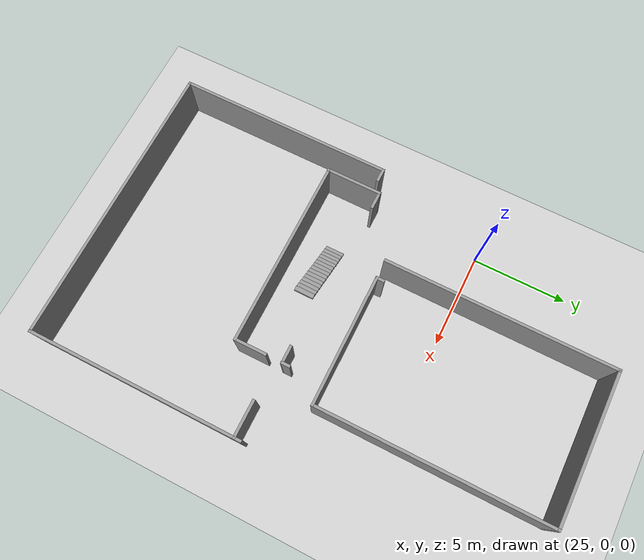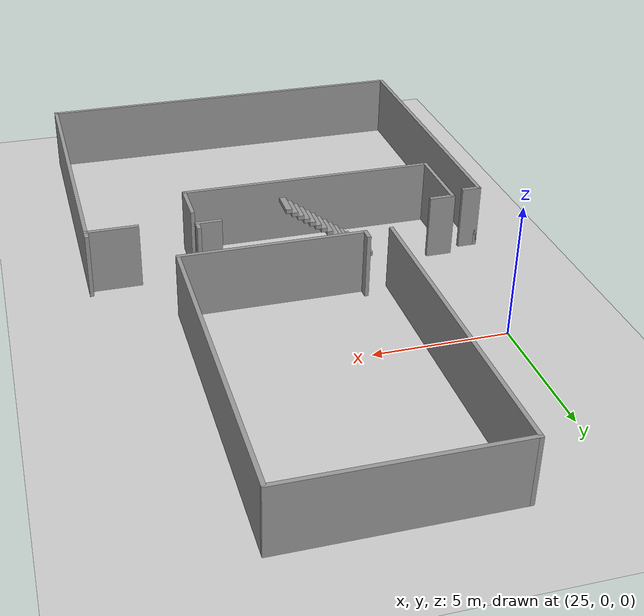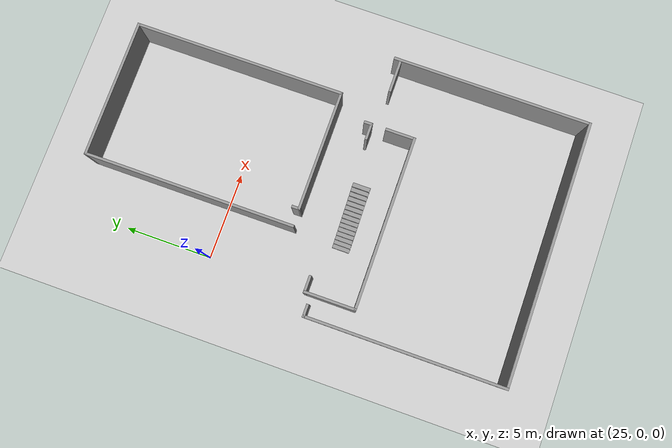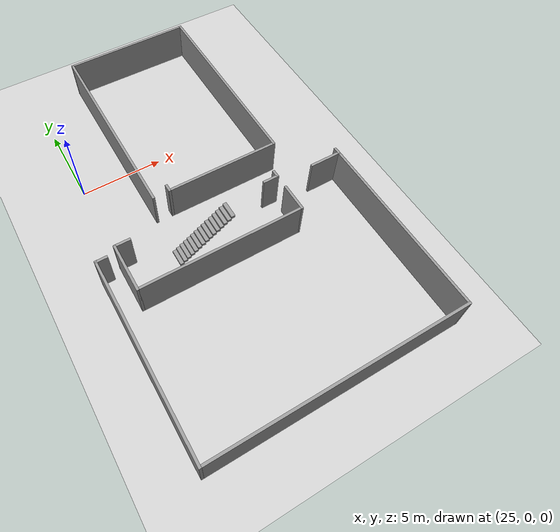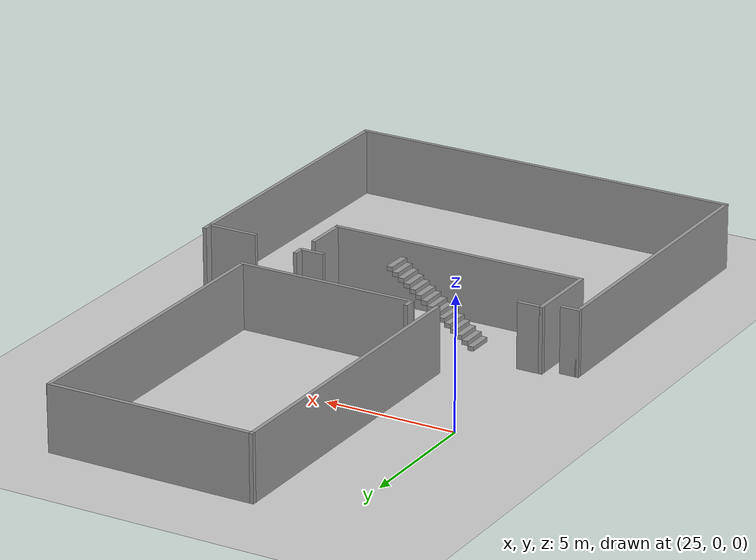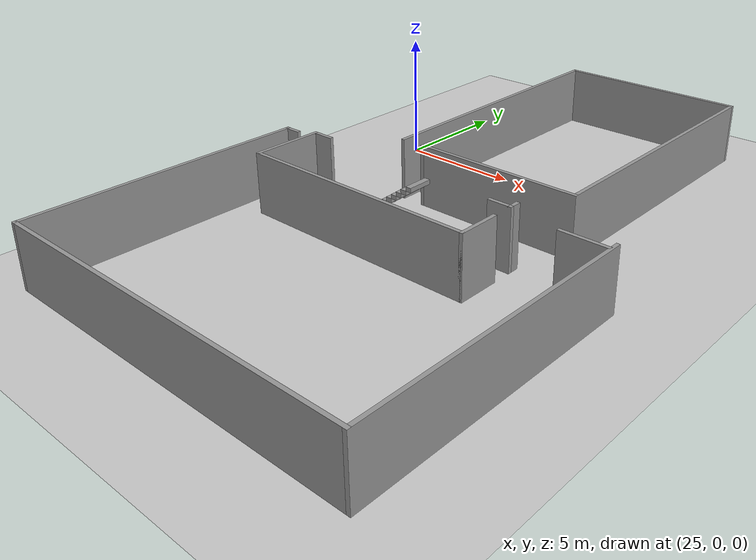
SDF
<sdf version="1.6">
 <world name="default">
  <model name="ground_plane">
   <static>1</static>
   <link name="link">
    <collision name="collision">
     <geometry><plane><normal>0 0 1</normal><size>100 100</size></plane></geometry>
     <surface><friction><ode><mu>100</mu><mu2>50</mu2></ode></friction></surface>
    </collision>
    <visual name="visual">
     <cast_shadows>0</cast_shadows>
     <geometry><plane><normal>0 0 1</normal><size>100 100</size></plane></geometry>
     <material>
      <script><uri>file://media/materials/scripts/gazebo.material</uri><name>Gazebo/Grey</name></script>
     </material>
    </visual>
   </link>
  </model>
  <model name="210">
   <pose>31.2026 -11.6558 0 0 -0 0</pose>
   <link name="Wall_101">
    <collision name="Wall_101_Collision">
     <geometry><box><size>11.46 0.15 2.5</size></box></geometry>
     <pose>0 0 1.25 0 -0 0</pose>
    </collision>
    <visual name="Wall_101_Visual">
     <pose>0 0 1.25 0 -0 0</pose>
     <geometry><box><size>11.46 0.15 2.5</size></box></geometry>
     <material>
      <script><uri>file://media/materials/scripts/gazebo.material</uri><name>Gazebo/Grey</name></script>
      <ambient>1 1 1 1</ambient>
     </material>
     <meta><layer>0</layer></meta>
    </visual>
    <pose>-7.545 -0.190602 0 0 -0 -1.5708</pose>
   </link>
   <link name="Wall_102">
    <collision name="Wall_102_Collision">
     <geometry><box><size>15.24 0.15 2.5</size></box></geometry>
     <pose>0 0 1.25 0 -0 0</pose>
    </collision>
    <visual name="Wall_102_Visual">
     <pose>0 0 1.25 0 -0 0</pose>
     <geometry><box><size>15.24 0.15 2.5</size></box></geometry>
     <material>
      <script><uri>file://media/materials/scripts/gazebo.material</uri><name>Gazebo/Grey</name></script>
      <ambient>1 1 1 1</ambient>
     </material>
     <meta><layer>0</layer></meta>
    </visual>
    <pose>0 -5.8456 0 0 -0 0</pose>
   </link>
   <link name="Wall_103">
    <collision name="Wall_103_Collision">
     <geometry><box><size>11.46 0.15 2.5</size></box></geometry>
     <pose>0 0 1.25 0 -0 0</pose>
    </collision>
    <visual name="Wall_103_Visual">
     <pose>0 0 1.25 0 -0 0</pose>
     <geometry><box><size>11.46 0.15 2.5</size></box></geometry>
     <material>
      <script><uri>file://media/materials/scripts/gazebo.material</uri><name>Gazebo/Grey</name></script>
      <ambient>1 1 1 1</ambient>
     </material>
     <meta><layer>0</layer></meta>
    </visual>
    <pose>7.545 -0.190602 0 0 -0 1.5708</pose>
   </link>
   <link name="Wall_105">
    <collision name="Wall_105_Collision">
     <geometry><box><size>0.75 0.15 2.5</size></box></geometry>
     <pose>0 0 1.25 0 -0 0</pose>
    </collision>
    <visual name="Wall_105_Visual">
     <pose>0 0 1.25 0 -0 0</pose>
     <geometry><box><size>0.75 0.15 2.5</size></box></geometry>
     <material>
      <script><uri>file://media/materials/scripts/gazebo.material</uri><name>Gazebo/Grey</name></script>
      <ambient>1 1 1 1</ambient>
     </material>
     <meta><layer>0</layer></meta>
    </visual>
    <pose>-7.245 5.4644 0 0 -0 0</pose>
   </link>
   <link name="Wall_108">
    <collision name="Wall_108_Collision">
     <geometry><box><size>3 0.15 2.5</size></box></geometry>
     <pose>0 0 1.25 0 -0 0</pose>
    </collision>
    <visual name="Wall_108_Visual">
     <pose>0 0 1.25 0 -0 0</pose>
     <geometry><box><size>3 0.15 2.5</size></box></geometry>
     <material>
      <script><uri>file://media/materials/scripts/gazebo.material</uri><name>Gazebo/Grey</name></script>
      <ambient>1 1 1 1</ambient>
     </material>
     <meta><layer>0</layer></meta>
    </visual>
    <pose>-6.32113 4.4206 0 0 -0 -1.5708</pose>
   </link>
   <link name="Wall_109">
    <collision name="Wall_109_Collision">
     <geometry><box><size>10 0.15 2.5</size></box></geometry>
     <pose>0 0 1.25 0 -0 0</pose>
    </collision>
    <visual name="Wall_109_Visual">
     <pose>0 0 1.25 0 -0 0</pose>
     <geometry><box><size>10 0.15 2.5</size></box></geometry>
     <material>
      <script><uri>file://media/materials/scripts/gazebo.material</uri><name>Gazebo/Grey</name></script>
      <ambient>1 1 1 1</ambient>
     </material>
     <meta><layer>0</layer></meta>
    </visual>
    <pose>-1.39613 2.9956 0 0 -0 0</pose>
   </link>
   <link name="Wall_111">
    <collision name="Wall_111_Collision">
     <geometry><box><size>0.5 0.15 2.5</size></box></geometry>
     <pose>0 0 1.25 0 -0 0</pose>
    </collision>
    <visual name="Wall_111_Visual">
     <pose>0 0 1.25 0 -0 0</pose>
     <geometry><box><size>0.5 0.15 2.5</size></box></geometry>
     <material>
      <script><uri>file://media/materials/scripts/gazebo.material</uri><name>Gazebo/Grey</name></script>
      <ambient>1 1 1 1</ambient>
     </material>
     <meta><layer>0</layer></meta>
    </visual>
    <pose>3.52887 5.6706 0 0 -0 -1.5708</pose>
   </link>
   <link name="Wall_112">
    <collision name="Wall_112_Collision">
     <geometry><box><size>1 0.15 2.5</size></box></geometry>
     <pose>0 0 1.25 0 -0 0</pose>
    </collision>
    <visual name="Wall_112_Visual">
     <pose>0 0 1.25 0 -0 0</pose>
     <geometry><box><size>1 0.15 2.5</size></box></geometry>
     <material>
      <script><uri>file://media/materials/scripts/gazebo.material</uri><name>Gazebo/Grey</name></script>
      <ambient>1 1 1 1</ambient>
     </material>
     <meta><layer>0</layer></meta>
    </visual>
    <pose>3.10387 5.4956 0 0 -0 3.14159</pose>
   </link>
   <link name="Wall_115">
    <collision name="Wall_115_Collision">
     <geometry><box><size>2 0.15 2.5</size></box></geometry>
     <pose>0 0 1.25 0 -0 0</pose>
    </collision>
    <visual name="Wall_115_Visual">
     <pose>0 0 1.25 0 -0 0</pose>
     <geometry><box><size>2 0.15 2.5</size></box></geometry>
     <material>
      <script><uri>file://media/materials/scripts/gazebo.material</uri><name>Gazebo/Grey</name></script>
      <ambient>1 1 1 1</ambient>
     </material>
     <meta><layer>0</layer></meta>
    </visual>
    <pose>6.6177 5.14338 0 0 -0 3.14159</pose>
   </link>
   <link name="Wall_117">
    <collision name="Wall_117_Collision">
     <geometry><box><size>1.75 0.15 2.5</size></box></geometry>
     <pose>0 0 1.25 0 -0 0</pose>
    </collision>
    <visual name="Wall_117_Visual">
     <pose>0 0 1.25 0 -0 0</pose>
     <geometry><box><size>1.75 0.15 2.5</size></box></geometry>
     <material>
      <script><uri>file://media/materials/scripts/gazebo.material</uri><name>Gazebo/Grey</name></script>
      <ambient>1 1 1 1</ambient>
     </material>
     <meta><layer>0</layer></meta>
    </visual>
    <pose>3.52887 3.7956 0 0 -0 1.5708</pose>
   </link>
   <link name="Wall_119">
    <collision name="Wall_119_Collision">
     <geometry><box><size>1 0.15 2.5</size></box></geometry>
     <pose>0 0 1.25 0 -0 0</pose>
    </collision>
    <visual name="Wall_119_Visual">
     <pose>0 0 1.25 0 -0 0</pose>
     <geometry><box><size>1 0.15 2.5</size></box></geometry>
     <material>
      <script><uri>file://media/materials/scripts/gazebo.material</uri><name>Gazebo/Grey</name></script>
      <ambient>1 1 1 1</ambient>
     </material>
     <meta><layer>0</layer></meta>
    </visual>
    <pose>-5.89613 5.8456 0 0 -0 0</pose>
   </link>
   <static>1</static>
  </model>
  <model name="classrooms_1">
   <pose>31.913 2.00923 0 0 -0 0</pose>
   <link name="Wall_39">
    <collision name="Wall_39_Collision">
     <geometry><box><size>12.192 0.15 2.5</size></box></geometry>
     <pose>0 0 1.25 0 -0 0</pose>
    </collision>
    <visual name="Wall_39_Visual">
     <pose>0 0 1.25 0 -0 0</pose>
     <geometry><box><size>12.192 0.15 2.5</size></box></geometry>
     <material>
      <script><uri>file://media/materials/scripts/gazebo.material</uri><name>Gazebo/Grey</name></script>
      <ambient>1 1 1 1</ambient>
     </material>
     <meta><layer>0</layer></meta>
    </visual>
    <pose>3.92486 -0.000205 0 0 -0 1.5708</pose>
   </link>
   <link name="Wall_40">
    <collision name="Wall_40_Collision">
     <geometry><box><size>7.99972 0.15 2.5</size></box></geometry>
     <pose>0 0 1.25 0 -0 0</pose>
    </collision>
    <visual name="Wall_40_Visual">
     <pose>0 0 1.25 0 -0 0</pose>
     <geometry><box><size>7.99972 0.15 2.5</size></box></geometry>
     <material>
      <script><uri>file://media/materials/scripts/gazebo.material</uri><name>Gazebo/Grey</name></script>
      <ambient>1 1 1 1</ambient>
     </material>
     <meta><layer>0</layer></meta>
    </visual>
    <pose>0 6.02093 0 0 -0 3.14156</pose>
   </link>
   <link name="Wall_41">
    <collision name="Wall_41_Collision">
     <geometry><box><size>12.1923 0.15 2.5</size></box></geometry>
     <pose>0 0 1.25 0 -0 0</pose>
    </collision>
    <visual name="Wall_41_Visual">
     <pose>0 0 1.25 0 -0 0</pose>
     <geometry><box><size>12.1923 0.15 2.5</size></box></geometry>
     <material>
      <script><uri>file://media/materials/scripts/gazebo.material</uri><name>Gazebo/Grey</name></script>
      <ambient>1 1 1 1</ambient>
     </material>
     <meta><layer>0</layer></meta>
    </visual>
    <pose>-3.92486 6.8e-05 0 0 -0 -1.5708</pose>
   </link>
   <link name="Wall_43">
    <collision name="Wall_43_Collision">
     <geometry><box><size>7 0.15 2.5</size></box></geometry>
     <pose>0 0 1.25 0 -0 0</pose>
    </collision>
    <visual name="Wall_43_Visual">
     <pose>0 0 1.25 0 -0 0</pose>
     <geometry><box><size>7 0.15 2.5</size></box></geometry>
     <material>
      <script><uri>file://media/materials/scripts/gazebo.material</uri><name>Gazebo/Grey</name></script>
      <ambient>1 1 1 1</ambient>
     </material>
     <meta><layer>0</layer></meta>
    </visual>
    <pose>0.49986 -6.02121 0 0 -0 3.14159</pose>
   </link>
   <link name="Wall_44">
    <collision name="Wall_44_Collision">
     <geometry><box><size>0.5 0.15 2.5</size></box></geometry>
     <pose>0 0 1.25 0 -0 0</pose>
    </collision>
    <visual name="Wall_44_Visual">
     <pose>0 0 1.25 0 -0 0</pose>
     <geometry><box><size>0.5 0.15 2.5</size></box></geometry>
     <material>
      <script><uri>file://media/materials/scripts/gazebo.material</uri><name>Gazebo/Grey</name></script>
      <ambient>1 1 1 1</ambient>
     </material>
     <meta><layer>0</layer></meta>
    </visual>
    <pose>-2.92514 -5.84621 0 0 -0 1.5708</pose>
   </link>
   <static>1</static>
  </model>
  <model name="Staircase_3">
   <link name="Stairs_0">
    <visual name="Stairs_0_Visual_2">
     <pose>-1.16667 -0 0.416667 0 -0 1.5708</pose>
     <geometry><box><size>1 0.233333 0.166667</size></box></geometry>
     <material>
      <script><uri>file://media/materials/scripts/gazebo.material</uri><name>Gazebo/Grey</name></script>
      <ambient>1 1 1 1</ambient>
      <shader type="pixel"/>
     </material>
     <meta><layer>0</layer></meta>
    </visual>
    <visual name="Stairs_0_Visual_3">
     <pose>-0.933333 -0 0.583333 0 -0 1.5708</pose>
     <geometry><box><size>1 0.233333 0.166667</size></box></geometry>
     <material>
      <script><uri>file://media/materials/scripts/gazebo.material</uri><name>Gazebo/Grey</name></script>
      <ambient>1 1 1 1</ambient>
      <shader type="pixel"/>
     </material>
     <meta><layer>0</layer></meta>
    </visual>
    <visual name="Stairs_0_Visual_4">
     <pose>-0.7 0 0.75 0 -0 1.5708</pose>
     <geometry><box><size>1 0.233333 0.166667</size></box></geometry>
     <material>
      <script><uri>file://media/materials/scripts/gazebo.material</uri><name>Gazebo/Grey</name></script>
      <ambient>1 1 1 1</ambient>
      <shader type="pixel"/>
     </material>
     <meta><layer>0</layer></meta>
    </visual>
    <visual name="Stairs_0_Visual_5">
     <pose>-0.466667 0 0.916667 0 -0 1.5708</pose>
     <geometry><box><size>1 0.233333 0.166667</size></box></geometry>
     <material>
      <script><uri>file://media/materials/scripts/gazebo.material</uri><name>Gazebo/Grey</name></script>
      <ambient>1 1 1 1</ambient>
      <shader type="pixel"/>
     </material>
     <meta><layer>0</layer></meta>
    </visual>
    <visual name="Stairs_0_Visual_6">
     <pose>-0.233333 0 1.08333 0 -0 1.5708</pose>
     <geometry><box><size>1 0.233333 0.166667</size></box></geometry>
     <material>
      <script><uri>file://media/materials/scripts/gazebo.material</uri><name>Gazebo/Grey</name></script>
      <ambient>1 1 1 1</ambient>
      <shader type="pixel"/>
     </material>
     <meta><layer>0</layer></meta>
    </visual>
    <visual name="Stairs_0_Visual_7">
     <pose>0 0 1.25 0 -0 1.5708</pose>
     <geometry><box><size>1 0.233333 0.166667</size></box></geometry>
     <material>
      <script><uri>file://media/materials/scripts/gazebo.material</uri><name>Gazebo/Grey</name></script>
      <ambient>1 1 1 1</ambient>
      <shader type="pixel"/>
     </material>
     <meta><layer>0</layer></meta>
    </visual>
    <visual name="Stairs_0_Visual_8">
     <pose>0.233333 0 1.41667 0 -0 1.5708</pose>
     <geometry><box><size>1 0.233333 0.166667</size></box></geometry>
     <material>
      <script><uri>file://media/materials/scripts/gazebo.material</uri><name>Gazebo/Grey</name></script>
      <ambient>1 1 1 1</ambient>
      <shader type="pixel"/>
     </material>
     <meta><layer>0</layer></meta>
    </visual>
    <visual name="Stairs_0_Visual_9">
     <pose>0.466667 0 1.58333 0 -0 1.5708</pose>
     <geometry><box><size>1 0.233333 0.166667</size></box></geometry>
     <material>
      <script><uri>file://media/materials/scripts/gazebo.material</uri><name>Gazebo/Grey</name></script>
      <ambient>1 1 1 1</ambient>
      <shader type="pixel"/>
     </material>
     <meta><layer>0</layer></meta>
    </visual>
    <visual name="Stairs_0_Visual_10">
     <pose>0.7 0 1.75 0 -0 1.5708</pose>
     <geometry><box><size>1 0.233333 0.166667</size></box></geometry>
     <material>
      <script><uri>file://media/materials/scripts/gazebo.material</uri><name>Gazebo/Grey</name></script>
      <ambient>1 1 1 1</ambient>
      <shader type="pixel"/>
     </material>
     <meta><layer>0</layer></meta>
    </visual>
    <visual name="Stairs_0_Visual_11">
     <pose>0.933334 0 1.91667 0 -0 1.5708</pose>
     <geometry><box><size>1 0.233333 0.166667</size></box></geometry>
     <material>
      <script><uri>file://media/materials/scripts/gazebo.material</uri><name>Gazebo/Grey</name></script>
      <ambient>1 1 1 1</ambient>
      <shader type="pixel"/>
     </material>
     <meta><layer>0</layer></meta>
    </visual>
    <visual name="Stairs_0_Visual_12">
     <pose>1.16667 0 2.08333 0 -0 1.5708</pose>
     <geometry><box><size>1 0.233333 0.166667</size></box></geometry>
     <material>
      <script><uri>file://media/materials/scripts/gazebo.material</uri><name>Gazebo/Grey</name></script>
      <ambient>1 1 1 1</ambient>
      <shader type="pixel"/>
     </material>
     <meta><layer>0</layer></meta>
    </visual>
    <visual name="Stairs_0_Visual_13">
     <pose>1.4 0 2.25 0 -0 1.5708</pose>
     <geometry><box><size>1 0.233333 0.166667</size></box></geometry>
     <material>
      <script><uri>file://media/materials/scripts/gazebo.material</uri><name>Gazebo/Grey</name></script>
      <ambient>1 1 1 1</ambient>
      <shader type="pixel"/>
     </material>
     <meta><layer>0</layer></meta>
    </visual>
    <visual name="Stairs_0_Visual_14">
     <pose>1.63333 0 2.41667 0 -0 1.5708</pose>
     <geometry><box><size>1 0.233333 0.166667</size></box></geometry>
     <material>
      <script><uri>file://media/materials/scripts/gazebo.material</uri><name>Gazebo/Grey</name></script>
      <ambient>1 1 1 1</ambient>
      <shader type="pixel"/>
     </material>
     <meta><layer>0</layer></meta>
    </visual>
    <visual name="Stairs_0_Visual_0">
     <pose>-1.63333 -0 0.083333 0 -0 1.5708</pose>
     <geometry><box><size>1 0.233333 0.166667</size></box></geometry>
     <material>
      <script><uri>file://media/materials/scripts/gazebo.material</uri><name>Gazebo/Grey</name></script>
      <ambient>1 1 1 1</ambient>
      <shader type="pixel"/>
     </material>
     <meta><layer>0</layer></meta>
    </visual>
    <visual name="Stairs_0_Visual_1">
     <pose>-1.4 -0 0.25 0 -0 1.5708</pose>
     <geometry><box><size>1 0.233333 0.166667</size></box></geometry>
     <material>
      <script><uri>file://media/materials/scripts/gazebo.material</uri><name>Gazebo/Grey</name></script>
      <ambient>1 1 1 1</ambient>
      <shader type="pixel"/>
     </material>
     <meta><layer>0</layer></meta>
    </visual>
    <collision name="Stairs_0_Collision_0">
     <pose>-1.63333 0 0.083333 0 -0 1.5708</pose>
     <geometry><box><size>1 0.233333 0.166667</size></box></geometry>
     <surface>
      <friction>
       <ode><mu>1</mu><mu2>1</mu2><fdir1>0 0 0</fdir1><slip1>0</slip1><slip2>0</slip2></ode>
       <torsional>
        <coefficient>1</coefficient>
        <patch_radius>0</patch_radius>
        <surface_radius>0</surface_radius>
        <use_patch_radius>1</use_patch_radius>
        <ode><slip>0</slip></ode>
       </torsional>
      </friction>
      <bounce><restitution_coefficient>0</restitution_coefficient><threshold>1e+06</threshold></bounce>
      <contact>
       <collide_without_contact>0</collide_without_contact>
       <collide_without_contact_bitmask>1</collide_without_contact_bitmask>
       <collide_bitmask>1</collide_bitmask>
       <ode>
        <soft_cfm>0</soft_cfm>
        <soft_erp>0.2</soft_erp>
        <kp>1e+13</kp>
        <kd>1</kd>
        <max_vel>0.01</max_vel>
        <min_depth>0</min_depth>
       </ode>
       <bullet>
        <split_impulse>1</split_impulse>
        <split_impulse_penetration_threshold>-0.01</split_impulse_penetration_threshold>
        <soft_cfm>0</soft_cfm>
        <soft_erp>0.2</soft_erp>
        <kp>1e+13</kp>
        <kd>1</kd>
       </bullet>
      </contact>
     </surface>
    </collision>
    <collision name="Stairs_0_Collision_1">
     <pose>-1.4 0 0.25 0 -0 1.5708</pose>
     <geometry><box><size>1 0.233333 0.166667</size></box></geometry>
     <surface>
      <friction>
       <ode><mu>1</mu><mu2>1</mu2><fdir1>0 0 0</fdir1><slip1>0</slip1><slip2>0</slip2></ode>
       <torsional>
        <coefficient>1</coefficient>
        <patch_radius>0</patch_radius>
        <surface_radius>0</surface_radius>
        <use_patch_radius>1</use_patch_radius>
        <ode><slip>0</slip></ode>
       </torsional>
      </friction>
      <bounce><restitution_coefficient>0</restitution_coefficient><threshold>1e+06</threshold></bounce>
      <contact>
       <collide_without_contact>0</collide_without_contact>
       <collide_without_contact_bitmask>1</collide_without_contact_bitmask>
       <collide_bitmask>1</collide_bitmask>
       <ode>
        <soft_cfm>0</soft_cfm>
        <soft_erp>0.2</soft_erp>
        <kp>1e+13</kp>
        <kd>1</kd>
        <max_vel>0.01</max_vel>
        <min_depth>0</min_depth>
       </ode>
       <bullet>
        <split_impulse>1</split_impulse>
        <split_impulse_penetration_threshold>-0.01</split_impulse_penetration_threshold>
        <soft_cfm>0</soft_cfm>
        <soft_erp>0.2</soft_erp>
        <kp>1e+13</kp>
        <kd>1</kd>
       </bullet>
      </contact>
     </surface>
    </collision>
    <collision name="Stairs_0_Collision_2">
     <pose>-1.16667 0 0.416667 0 -0 1.5708</pose>
     <geometry><box><size>1 0.233333 0.166667</size></box></geometry>
     <surface>
      <friction>
       <ode><mu>1</mu><mu2>1</mu2><fdir1>0 0 0</fdir1><slip1>0</slip1><slip2>0</slip2></ode>
       <torsional>
        <coefficient>1</coefficient>
        <patch_radius>0</patch_radius>
        <surface_radius>0</surface_radius>
        <use_patch_radius>1</use_patch_radius>
        <ode><slip>0</slip></ode>
       </torsional>
      </friction>
      <bounce><restitution_coefficient>0</restitution_coefficient><threshold>1e+06</threshold></bounce>
      <contact>
       <collide_without_contact>0</collide_without_contact>
       <collide_without_contact_bitmask>1</collide_without_contact_bitmask>
       <collide_bitmask>1</collide_bitmask>
       <ode>
        <soft_cfm>0</soft_cfm>
        <soft_erp>0.2</soft_erp>
        <kp>1e+13</kp>
        <kd>1</kd>
        <max_vel>0.01</max_vel>
        <min_depth>0</min_depth>
       </ode>
       <bullet>
        <split_impulse>1</split_impulse>
        <split_impulse_penetration_threshold>-0.01</split_impulse_penetration_threshold>
        <soft_cfm>0</soft_cfm>
        <soft_erp>0.2</soft_erp>
        <kp>1e+13</kp>
        <kd>1</kd>
       </bullet>
      </contact>
     </surface>
    </collision>
    <collision name="Stairs_0_Collision_3">
     <pose>-0.933333 0 0.583333 0 -0 1.5708</pose>
     <geometry><box><size>1 0.233333 0.166667</size></box></geometry>
     <surface>
      <friction>
       <ode><mu>1</mu><mu2>1</mu2><fdir1>0 0 0</fdir1><slip1>0</slip1><slip2>0</slip2></ode>
       <torsional>
        <coefficient>1</coefficient>
        <patch_radius>0</patch_radius>
        <surface_radius>0</surface_radius>
        <use_patch_radius>1</use_patch_radius>
        <ode><slip>0</slip></ode>
       </torsional>
      </friction>
      <bounce><restitution_coefficient>0</restitution_coefficient><threshold>1e+06</threshold></bounce>
      <contact>
       <collide_without_contact>0</collide_without_contact>
       <collide_without_contact_bitmask>1</collide_without_contact_bitmask>
       <collide_bitmask>1</collide_bitmask>
       <ode>
        <soft_cfm>0</soft_cfm>
        <soft_erp>0.2</soft_erp>
        <kp>1e+13</kp>
        <kd>1</kd>
        <max_vel>0.01</max_vel>
        <min_depth>0</min_depth>
       </ode>
       <bullet>
        <split_impulse>1</split_impulse>
        <split_impulse_penetration_threshold>-0.01</split_impulse_penetration_threshold>
        <soft_cfm>0</soft_cfm>
        <soft_erp>0.2</soft_erp>
        <kp>1e+13</kp>
        <kd>1</kd>
       </bullet>
      </contact>
     </surface>
    </collision>
    <collision name="Stairs_0_Collision_4">
     <pose>-0.7 0 0.75 0 -0 1.5708</pose>
     <geometry><box><size>1 0.233333 0.166667</size></box></geometry>
     <surface>
      <friction>
       <ode><mu>1</mu><mu2>1</mu2><fdir1>0 0 0</fdir1><slip1>0</slip1><slip2>0</slip2></ode>
       <torsional>
        <coefficient>1</coefficient>
        <patch_radius>0</patch_radius>
        <surface_radius>0</surface_radius>
        <use_patch_radius>1</use_patch_radius>
        <ode><slip>0</slip></ode>
       </torsional>
      </friction>
      <bounce><restitution_coefficient>0</restitution_coefficient><threshold>1e+06</threshold></bounce>
      <contact>
       <collide_without_contact>0</collide_without_contact>
       <collide_without_contact_bitmask>1</collide_without_contact_bitmask>
       <collide_bitmask>1</collide_bitmask>
       <ode>
        <soft_cfm>0</soft_cfm>
        <soft_erp>0.2</soft_erp>
        <kp>1e+13</kp>
        <kd>1</kd>
        <max_vel>0.01</max_vel>
        <min_depth>0</min_depth>
       </ode>
       <bullet>
        <split_impulse>1</split_impulse>
        <split_impulse_penetration_threshold>-0.01</split_impulse_penetration_threshold>
        <soft_cfm>0</soft_cfm>
        <soft_erp>0.2</soft_erp>
        <kp>1e+13</kp>
        <kd>1</kd>
       </bullet>
      </contact>
     </surface>
    </collision>
    <collision name="Stairs_0_Collision_5">
     <pose>-0.466667 0 0.916667 0 -0 1.5708</pose>
     <geometry><box><size>1 0.233333 0.166667</size></box></geometry>
     <surface>
      <friction>
       <ode><mu>1</mu><mu2>1</mu2><fdir1>0 0 0</fdir1><slip1>0</slip1><slip2>0</slip2></ode>
       <torsional>
        <coefficient>1</coefficient>
        <patch_radius>0</patch_radius>
        <surface_radius>0</surface_radius>
        <use_patch_radius>1</use_patch_radius>
        <ode><slip>0</slip></ode>
       </torsional>
      </friction>
      <bounce><restitution_coefficient>0</restitution_coefficient><threshold>1e+06</threshold></bounce>
      <contact>
       <collide_without_contact>0</collide_without_contact>
       <collide_without_contact_bitmask>1</collide_without_contact_bitmask>
       <collide_bitmask>1</collide_bitmask>
       <ode>
        <soft_cfm>0</soft_cfm>
        <soft_erp>0.2</soft_erp>
        <kp>1e+13</kp>
        <kd>1</kd>
        <max_vel>0.01</max_vel>
        <min_depth>0</min_depth>
       </ode>
       <bullet>
        <split_impulse>1</split_impulse>
        <split_impulse_penetration_threshold>-0.01</split_impulse_penetration_threshold>
        <soft_cfm>0</soft_cfm>
        <soft_erp>0.2</soft_erp>
        <kp>1e+13</kp>
        <kd>1</kd>
       </bullet>
      </contact>
     </surface>
    </collision>
    <collision name="Stairs_0_Collision_6">
     <pose>-0.233333 0 1.08333 0 -0 1.5708</pose>
     <geometry><box><size>1 0.233333 0.166667</size></box></geometry>
     <surface>
      <friction>
       <ode><mu>1</mu><mu2>1</mu2><fdir1>0 0 0</fdir1><slip1>0</slip1><slip2>0</slip2></ode>
       <torsional>
        <coefficient>1</coefficient>
        <patch_radius>0</patch_radius>
        <surface_radius>0</surface_radius>
        <use_patch_radius>1</use_patch_radius>
        <ode><slip>0</slip></ode>
       </torsional>
      </friction>
      <bounce><restitution_coefficient>0</restitution_coefficient><threshold>1e+06</threshold></bounce>
      <contact>
       <collide_without_contact>0</collide_without_contact>
       <collide_without_contact_bitmask>1</collide_without_contact_bitmask>
       <collide_bitmask>1</collide_bitmask>
       <ode>
        <soft_cfm>0</soft_cfm>
        <soft_erp>0.2</soft_erp>
        <kp>1e+13</kp>
        <kd>1</kd>
        <max_vel>0.01</max_vel>
        <min_depth>0</min_depth>
       </ode>
       <bullet>
        <split_impulse>1</split_impulse>
        <split_impulse_penetration_threshold>-0.01</split_impulse_penetration_threshold>
        <soft_cfm>0</soft_cfm>
        <soft_erp>0.2</soft_erp>
        <kp>1e+13</kp>
        <kd>1</kd>
       </bullet>
      </contact>
     </surface>
    </collision>
    <collision name="Stairs_0_Collision_7">
     <pose>0 0 1.25 0 -0 1.5708</pose>
     <geometry><box><size>1 0.233333 0.166667</size></box></geometry>
     <surface>
      <friction>
       <ode><mu>1</mu><mu2>1</mu2><fdir1>0 0 0</fdir1><slip1>0</slip1><slip2>0</slip2></ode>
       <torsional>
        <coefficient>1</coefficient>
        <patch_radius>0</patch_radius>
        <surface_radius>0</surface_radius>
        <use_patch_radius>1</use_patch_radius>
        <ode><slip>0</slip></ode>
       </torsional>
      </friction>
      <bounce><restitution_coefficient>0</restitution_coefficient><threshold>1e+06</threshold></bounce>
      <contact>
       <collide_without_contact>0</collide_without_contact>
       <collide_without_contact_bitmask>1</collide_without_contact_bitmask>
       <collide_bitmask>1</collide_bitmask>
       <ode>
        <soft_cfm>0</soft_cfm>
        <soft_erp>0.2</soft_erp>
        <kp>1e+13</kp>
        <kd>1</kd>
        <max_vel>0.01</max_vel>
        <min_depth>0</min_depth>
       </ode>
       <bullet>
        <split_impulse>1</split_impulse>
        <split_impulse_penetration_threshold>-0.01</split_impulse_penetration_threshold>
        <soft_cfm>0</soft_cfm>
        <soft_erp>0.2</soft_erp>
        <kp>1e+13</kp>
        <kd>1</kd>
       </bullet>
      </contact>
     </surface>
    </collision>
    <collision name="Stairs_0_Collision_8">
     <pose>0.233333 0 1.41667 0 -0 1.5708</pose>
     <geometry><box><size>1 0.233333 0.166667</size></box></geometry>
     <surface>
      <friction>
       <ode><mu>1</mu><mu2>1</mu2><fdir1>0 0 0</fdir1><slip1>0</slip1><slip2>0</slip2></ode>
       <torsional>
        <coefficient>1</coefficient>
        <patch_radius>0</patch_radius>
        <surface_radius>0</surface_radius>
        <use_patch_radius>1</use_patch_radius>
        <ode><slip>0</slip></ode>
       </torsional>
      </friction>
      <bounce><restitution_coefficient>0</restitution_coefficient><threshold>1e+06</threshold></bounce>
      <contact>
       <collide_without_contact>0</collide_without_contact>
       <collide_without_contact_bitmask>1</collide_without_contact_bitmask>
       <collide_bitmask>1</collide_bitmask>
       <ode>
        <soft_cfm>0</soft_cfm>
        <soft_erp>0.2</soft_erp>
        <kp>1e+13</kp>
        <kd>1</kd>
        <max_vel>0.01</max_vel>
        <min_depth>0</min_depth>
       </ode>
       <bullet>
        <split_impulse>1</split_impulse>
        <split_impulse_penetration_threshold>-0.01</split_impulse_penetration_threshold>
        <soft_cfm>0</soft_cfm>
        <soft_erp>0.2</soft_erp>
        <kp>1e+13</kp>
        <kd>1</kd>
       </bullet>
      </contact>
     </surface>
    </collision>
    <collision name="Stairs_0_Collision_9">
     <pose>0.466667 0 1.58333 0 -0 1.5708</pose>
     <geometry><box><size>1 0.233333 0.166667</size></box></geometry>
     <surface>
      <friction>
       <ode><mu>1</mu><mu2>1</mu2><fdir1>0 0 0</fdir1><slip1>0</slip1><slip2>0</slip2></ode>
       <torsional>
        <coefficient>1</coefficient>
        <patch_radius>0</patch_radius>
        <surface_radius>0</surface_radius>
        <use_patch_radius>1</use_patch_radius>
        <ode><slip>0</slip></ode>
       </torsional>
      </friction>
      <bounce><restitution_coefficient>0</restitution_coefficient><threshold>1e+06</threshold></bounce>
      <contact>
       <collide_without_contact>0</collide_without_contact>
       <collide_without_contact_bitmask>1</collide_without_contact_bitmask>
       <collide_bitmask>1</collide_bitmask>
       <ode>
        <soft_cfm>0</soft_cfm>
        <soft_erp>0.2</soft_erp>
        <kp>1e+13</kp>
        <kd>1</kd>
        <max_vel>0.01</max_vel>
        <min_depth>0</min_depth>
       </ode>
       <bullet>
        <split_impulse>1</split_impulse>
        <split_impulse_penetration_threshold>-0.01</split_impulse_penetration_threshold>
        <soft_cfm>0</soft_cfm>
        <soft_erp>0.2</soft_erp>
        <kp>1e+13</kp>
        <kd>1</kd>
       </bullet>
      </contact>
     </surface>
    </collision>
    <collision name="Stairs_0_Collision_10">
     <pose>0.7 0 1.75 0 -0 1.5708</pose>
     <geometry><box><size>1 0.233333 0.166667</size></box></geometry>
     <surface>
      <friction>
       <ode><mu>1</mu><mu2>1</mu2><fdir1>0 0 0</fdir1><slip1>0</slip1><slip2>0</slip2></ode>
       <torsional>
        <coefficient>1</coefficient>
        <patch_radius>0</patch_radius>
        <surface_radius>0</surface_radius>
        <use_patch_radius>1</use_patch_radius>
        <ode><slip>0</slip></ode>
       </torsional>
      </friction>
      <bounce><restitution_coefficient>0</restitution_coefficient><threshold>1e+06</threshold></bounce>
      <contact>
       <collide_without_contact>0</collide_without_contact>
       <collide_without_contact_bitmask>1</collide_without_contact_bitmask>
       <collide_bitmask>1</collide_bitmask>
       <ode>
        <soft_cfm>0</soft_cfm>
        <soft_erp>0.2</soft_erp>
        <kp>1e+13</kp>
        <kd>1</kd>
        <max_vel>0.01</max_vel>
        <min_depth>0</min_depth>
       </ode>
       <bullet>
        <split_impulse>1</split_impulse>
        <split_impulse_penetration_threshold>-0.01</split_impulse_penetration_threshold>
        <soft_cfm>0</soft_cfm>
        <soft_erp>0.2</soft_erp>
        <kp>1e+13</kp>
        <kd>1</kd>
       </bullet>
      </contact>
     </surface>
    </collision>
    <collision name="Stairs_0_Collision_11">
     <pose>0.933334 0 1.91667 0 -0 1.5708</pose>
     <geometry><box><size>1 0.233333 0.166667</size></box></geometry>
     <surface>
      <friction>
       <ode><mu>1</mu><mu2>1</mu2><fdir1>0 0 0</fdir1><slip1>0</slip1><slip2>0</slip2></ode>
       <torsional>
        <coefficient>1</coefficient>
        <patch_radius>0</patch_radius>
        <surface_radius>0</surface_radius>
        <use_patch_radius>1</use_patch_radius>
        <ode><slip>0</slip></ode>
       </torsional>
      </friction>
      <bounce><restitution_coefficient>0</restitution_coefficient><threshold>1e+06</threshold></bounce>
      <contact>
       <collide_without_contact>0</collide_without_contact>
       <collide_without_contact_bitmask>1</collide_without_contact_bitmask>
       <collide_bitmask>1</collide_bitmask>
       <ode>
        <soft_cfm>0</soft_cfm>
        <soft_erp>0.2</soft_erp>
        <kp>1e+13</kp>
        <kd>1</kd>
        <max_vel>0.01</max_vel>
        <min_depth>0</min_depth>
       </ode>
       <bullet>
        <split_impulse>1</split_impulse>
        <split_impulse_penetration_threshold>-0.01</split_impulse_penetration_threshold>
        <soft_cfm>0</soft_cfm>
        <soft_erp>0.2</soft_erp>
        <kp>1e+13</kp>
        <kd>1</kd>
       </bullet>
      </contact>
     </surface>
    </collision>
    <collision name="Stairs_0_Collision_12">
     <pose>1.16667 0 2.08333 0 -0 1.5708</pose>
     <geometry><box><size>1 0.233333 0.166667</size></box></geometry>
     <surface>
      <friction>
       <ode><mu>1</mu><mu2>1</mu2><fdir1>0 0 0</fdir1><slip1>0</slip1><slip2>0</slip2></ode>
       <torsional>
        <coefficient>1</coefficient>
        <patch_radius>0</patch_radius>
        <surface_radius>0</surface_radius>
        <use_patch_radius>1</use_patch_radius>
        <ode><slip>0</slip></ode>
       </torsional>
      </friction>
      <bounce><restitution_coefficient>0</restitution_coefficient><threshold>1e+06</threshold></bounce>
      <contact>
       <collide_without_contact>0</collide_without_contact>
       <collide_without_contact_bitmask>1</collide_without_contact_bitmask>
       <collide_bitmask>1</collide_bitmask>
       <ode>
        <soft_cfm>0</soft_cfm>
        <soft_erp>0.2</soft_erp>
        <kp>1e+13</kp>
        <kd>1</kd>
        <max_vel>0.01</max_vel>
        <min_depth>0</min_depth>
       </ode>
       <bullet>
        <split_impulse>1</split_impulse>
        <split_impulse_penetration_threshold>-0.01</split_impulse_penetration_threshold>
        <soft_cfm>0</soft_cfm>
        <soft_erp>0.2</soft_erp>
        <kp>1e+13</kp>
        <kd>1</kd>
       </bullet>
      </contact>
     </surface>
    </collision>
    <collision name="Stairs_0_Collision_13">
     <pose>1.4 0 2.25 0 -0 1.5708</pose>
     <geometry><box><size>1 0.233333 0.166667</size></box></geometry>
     <surface>
      <friction>
       <ode><mu>1</mu><mu2>1</mu2><fdir1>0 0 0</fdir1><slip1>0</slip1><slip2>0</slip2></ode>
       <torsional>
        <coefficient>1</coefficient>
        <patch_radius>0</patch_radius>
        <surface_radius>0</surface_radius>
        <use_patch_radius>1</use_patch_radius>
        <ode><slip>0</slip></ode>
       </torsional>
      </friction>
      <bounce><restitution_coefficient>0</restitution_coefficient><threshold>1e+06</threshold></bounce>
      <contact>
       <collide_without_contact>0</collide_without_contact>
       <collide_without_contact_bitmask>1</collide_without_contact_bitmask>
       <collide_bitmask>1</collide_bitmask>
       <ode>
        <soft_cfm>0</soft_cfm>
        <soft_erp>0.2</soft_erp>
        <kp>1e+13</kp>
        <kd>1</kd>
        <max_vel>0.01</max_vel>
        <min_depth>0</min_depth>
       </ode>
       <bullet>
        <split_impulse>1</split_impulse>
        <split_impulse_penetration_threshold>-0.01</split_impulse_penetration_threshold>
        <soft_cfm>0</soft_cfm>
        <soft_erp>0.2</soft_erp>
        <kp>1e+13</kp>
        <kd>1</kd>
       </bullet>
      </contact>
     </surface>
    </collision>
    <collision name="Stairs_0_Collision_14">
     <pose>1.63333 0 2.41667 0 -0 1.5708</pose>
     <geometry><box><size>1 0.233333 0.166667</size></box></geometry>
     <surface>
      <friction>
       <ode><mu>1</mu><mu2>1</mu2><fdir1>0 0 0</fdir1><slip1>0</slip1><slip2>0</slip2></ode>
       <torsional>
        <coefficient>1</coefficient>
        <patch_radius>0</patch_radius>
        <surface_radius>0</surface_radius>
        <use_patch_radius>1</use_patch_radius>
        <ode><slip>0</slip></ode>
       </torsional>
      </friction>
      <bounce><restitution_coefficient>0</restitution_coefficient><threshold>1e+06</threshold></bounce>
      <contact>
       <collide_without_contact>0</collide_without_contact>
       <collide_without_contact_bitmask>1</collide_without_contact_bitmask>
       <collide_bitmask>1</collide_bitmask>
       <ode>
        <soft_cfm>0</soft_cfm>
        <soft_erp>0.2</soft_erp>
        <kp>1e+13</kp>
        <kd>1</kd>
        <max_vel>0.01</max_vel>
        <min_depth>0</min_depth>
       </ode>
       <bullet>
        <split_impulse>1</split_impulse>
        <split_impulse_penetration_threshold>-0.01</split_impulse_penetration_threshold>
        <soft_cfm>0</soft_cfm>
        <soft_erp>0.2</soft_erp>
        <kp>1e+13</kp>
        <kd>1</kd>
       </bullet>
      </contact>
     </surface>
    </collision>
   </link>
   <static>1</static>
   <pose>29.5727 -6.79962 0 0 -0 0</pose>
  </model>
 </world>
</sdf>
